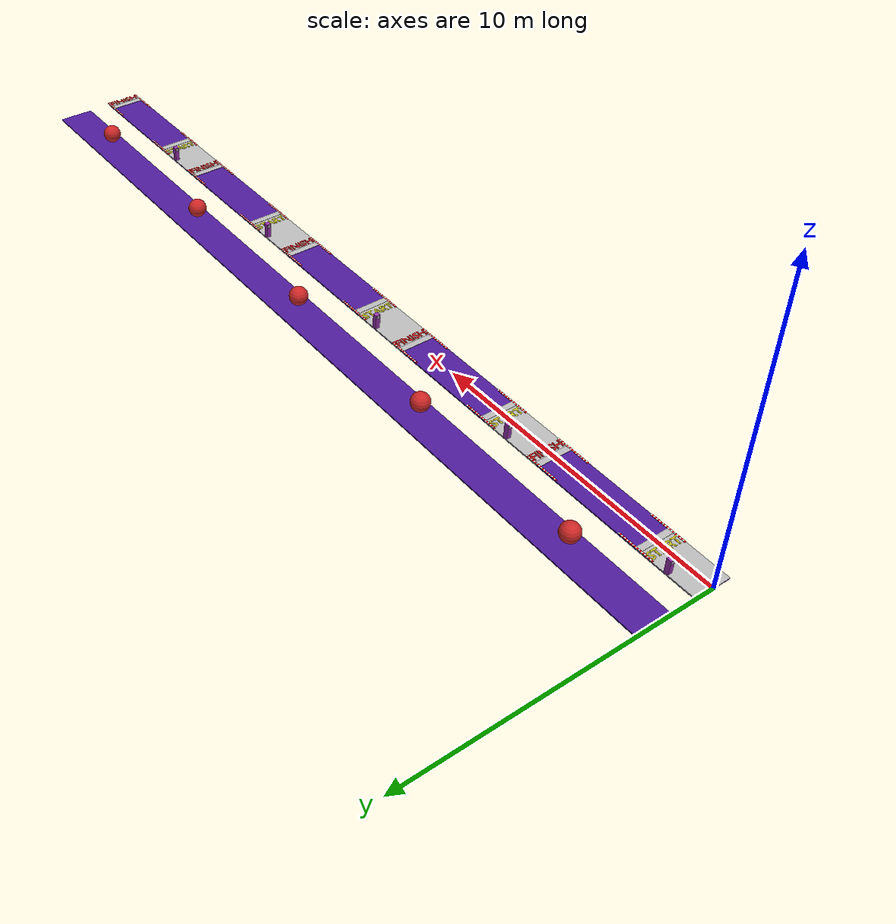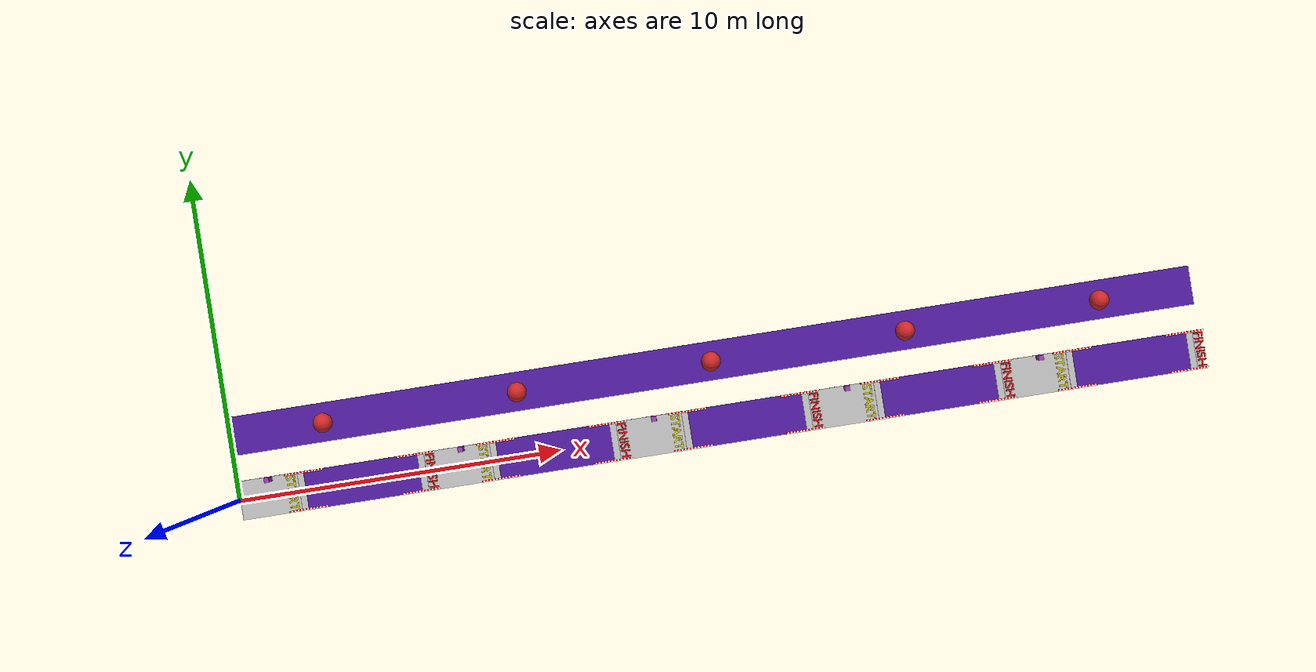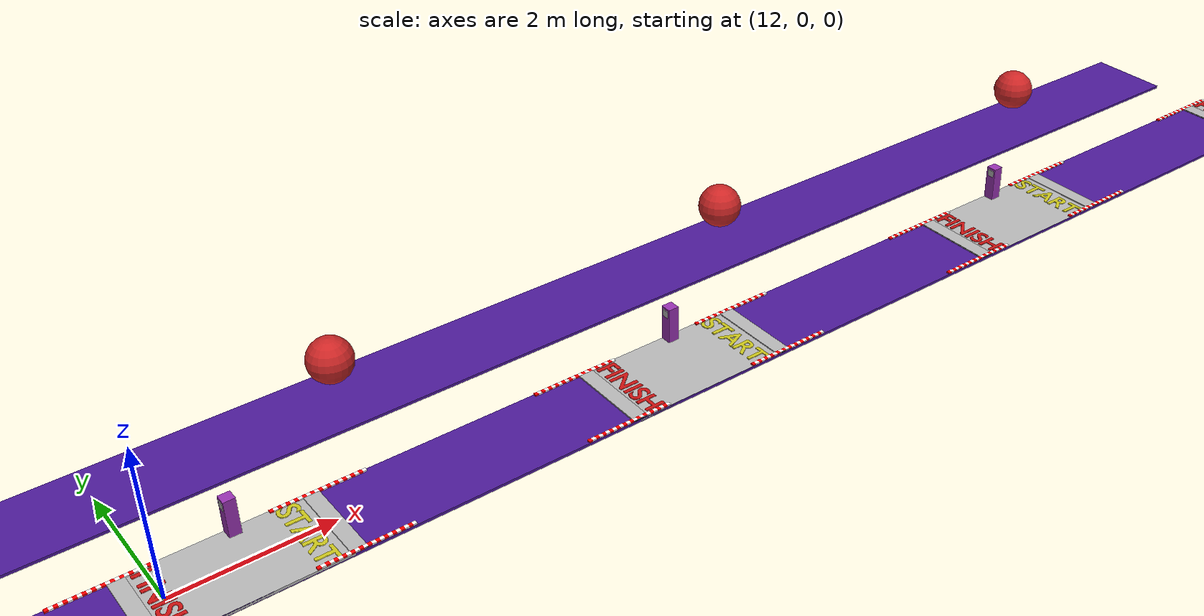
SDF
<?xml version="1.0" ?>
<sdf version="1.5">
  <world name="default">
    <gui>
      <camera name="user_camera">
        <pose>-3.2 0.0 2.05 0 0.33 0.0</pose>
      </camera>
    </gui>
    <scene>
      <sky>
        <clouds>
          <speed>3</speed>
        </clouds>
      </sky>
      <ambient>0.6 0.6 0.6 1</ambient>
      <background>0.5 0.5 0.5 1</background>
      <shadows>0</shadows>
    </scene>

    <!-- A global light source -->
    <include>
      <uri>model://sun_2</uri>
    </include>

    <include>
      <uri>model://task_3_whole</uri>
    </include>

    <include>
      <name>ds1</name>
      <pose>3 2 0.6 0 0 0</pose>
      <uri>model://disturbance_sphere</uri>
    </include>
   <include>
      <name>ds2</name>
      <pose>9 2 0.6 0 0 0</pose>
      <uri>model://disturbance_sphere</uri>
    </include>
   <include>
      <name>ds3</name>
      <pose>15 2 0.6 0 0 0</pose>
      <uri>model://disturbance_sphere</uri>
    </include>
   <include>
      <name>ds4</name>
      <pose>21 2 0.6 0 0 0</pose>
      <uri>model://disturbance_sphere</uri>
    </include>
   <include>
      <name>ds5</name>
      <pose>27 2 0.6 0 0 0</pose>
      <uri>model://disturbance_sphere</uri>
    </include>

  </world>
</sdf>

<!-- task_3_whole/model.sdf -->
<sdf version="1.5">
  <model name="task_3_whole">

    <include>
      <pose>0.923 0.52 0.42 0 1.5708 0</pose>
      <uri>model://disturbance_1_false</uri>
    </include>
    <include>
      <pose>6.923 0.52 0.42 0 1.5708 0</pose>
      <uri>model://disturbance_2_false</uri>
    </include>
    <include>
      <pose>12.923 0.52 0.42 0 1.5708 0</pose>
      <uri>model://disturbance_3_false</uri>
    </include>
    <include>
      <pose>18.923 0.52 0.42 0 1.5708 0</pose>
      <uri>model://disturbance_4_false</uri>
    </include>
    <include>
      <pose>24.923 0.52 0.42 0 1.5708 0</pose>
      <uri>model://disturbance_5_false</uri>
    </include>

    <include>
      <name>floorx</name>
      <pose>15 2 0 0 0 0</pose>
      <uri>model://floor_30m</uri>
    </include>

    <include>
      <name>floorb</name>
      <pose>15 0 0 0 0 0</pose>
      <uri>model://floor_30m</uri>
    </include>

    <include>
      <name>s1</name>
      <pose>1.5 0 0 0 0 -1.5708</pose>
      <uri>model://start_line</uri>
    </include>
    <include>
      <name>s2</name>
      <pose>7.5 0 0 0 0 -1.5708</pose>
      <uri>model://start_line</uri>
    </include>
    <include>
      <name>s3</name>
      <pose>13.5 0 0 0 0 -1.5708</pose>
      <uri>model://start_line</uri>
    </include>
    <include>
      <name>s4</name>
      <pose>19.5 0 0 0 0 -1.5708</pose>
      <uri>model://start_line</uri>
    </include>
    <include>
      <name>s5</name>
      <pose>25.5 0 0 0 0 -1.5708</pose>
      <uri>model://start_line</uri>
    </include>

    <include>
      <name>f1</name>
      <pose>5 0 0 0 0 -1.5708</pose>
      <uri>model://finish_line</uri>
    </include>
    <include>
      <name>f2</name>
      <pose>11 0 0 0 0 -1.5708</pose>
      <uri>model://finish_line</uri>
    </include>
    <include>
      <name>f3</name>
      <pose>17 0 0 0 0 -1.5708</pose>
      <uri>model://finish_line</uri>
    </include>
    <include>
      <name>f4</name>
      <pose>23 0 0 0 0 -1.5708</pose>
      <uri>model://finish_line</uri>
    </include>
    <include>
      <name>f5</name>
      <pose>29 0 0 0 0 -1.5708</pose>
      <uri>model://finish_line</uri>
    </include>

    <include>
      <name>w1</name>
      <pose>1 0 0.005 0 0 0</pose>
      <uri>model://floor_2_concrete</uri>
    </include>
    <include>
      <name>w2</name>
      <pose>6.8 0 0.005 0 0 0</pose>
      <uri>model://floor_2.2_concrete</uri>
    </include>
    <include>
      <name>w3</name>
      <pose>12.8 0 0.005 0 0 0</pose>
      <uri>model://floor_2.2_concrete</uri>
    </include>
    <include>
      <name>w4</name>
      <pose>18.8 0 0.005 0 0 0</pose>
      <uri>model://floor_2.2_concrete</uri>
    </include>
    <include>
      <name>w5</name>
      <pose>24.8 0 0.005 0 0 0</pose>
      <uri>model://floor_2.2_concrete</uri>
    </include>
    <include>
      <name>w6</name>
      <pose>29.85 0 0.005 0 0 0</pose>
      <uri>model://floor_0.3_concrete</uri>
    </include>

    <include>
      <name>q1</name>
      <pose>1 0.525 0 0 0 0</pose>
      <uri>model://qr_pole</uri>
    </include>
    <include>
      <name>q2</name>
      <pose>7 0.525 0 0 0 0</pose>
      <uri>model://qr_pole</uri>
    </include>
    <include>
      <name>q3</name>
      <pose>13 0.525 0 0 0 0</pose>
      <uri>model://qr_pole</uri>
    </include>
    <include>
      <name>q4</name>
      <pose>19 0.525 0 0 0 0</pose>
      <uri>model://qr_pole</uri>
    </include>
    <include>
      <name>q5</name>
      <pose>25 0.525 0 0 0 0</pose>
      <uri>model://qr_pole</uri>
    </include>

  </model>
</sdf>

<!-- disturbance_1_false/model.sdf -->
<sdf version="1.5">
  <model name="disturbance_1_false">
    <static>true</static>
    <link name="link">
      <pose>0 0 0 0 0 0</pose>
      <collision name="collision">
        <geometry>
          <box>
            <size>0.1 0.1 0.01</size>
          </box>
        </geometry>
      </collision>
      <visual name="visual">
        <cast_shadows>false</cast_shadows>
        <geometry>
          <box>
            <size>0.1 0.1 0.01</size>
          </box>
        </geometry>
        <material>
          <script>
            <uri>model://disturbance_1_false/materials/scripts</uri>
            <uri>model://disturbance_1_false/materials/textures</uri>
            <name>vrc/disturbance_1_false</name>
          </script>
        </material>
      </visual>
    </link>
  </model>
</sdf>

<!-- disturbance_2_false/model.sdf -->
<sdf version="1.5">
  <model name="disturbance_2_false">
    <static>true</static>
    <link name="link">
      <pose>0 0 0 0 0 0</pose>
      <collision name="collision">
        <geometry>
          <box>
            <size>0.1 0.1 0.01</size>
          </box>
        </geometry>
      </collision>
      <visual name="visual">
        <cast_shadows>false</cast_shadows>
        <geometry>
          <box>
            <size>0.1 0.1 0.01</size>
          </box>
        </geometry>
        <material>
          <script>
            <uri>model://disturbance_2_false/materials/scripts</uri>
            <uri>model://disturbance_2_false/materials/textures</uri>
            <name>vrc/disturbance_2_false</name>
          </script>
        </material>
      </visual>
    </link>
  </model>
</sdf>

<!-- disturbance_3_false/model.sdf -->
<sdf version="1.5">
  <model name="disturbance_3_false">
    <static>true</static>
    <link name="link">
      <pose>0 0 0 0 0 0</pose>
      <collision name="collision">
        <geometry>
          <box>
            <size>0.1 0.1 0.01</size>
          </box>
        </geometry>
      </collision>
      <visual name="visual">
        <cast_shadows>false</cast_shadows>
        <geometry>
          <box>
            <size>0.1 0.1 0.01</size>
          </box>
        </geometry>
        <material>
          <script>
            <uri>model://disturbance_3_false/materials/scripts</uri>
            <uri>model://disturbance_3_false/materials/textures</uri>
            <name>vrc/disturbance_3_false</name>
          </script>
        </material>
      </visual>
    </link>
  </model>
</sdf>

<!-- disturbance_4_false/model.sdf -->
<sdf version="1.5">
  <model name="disturbance_4_false">
    <static>true</static>
    <link name="link">
      <pose>0 0 0 0 0 0</pose>
      <collision name="collision">
        <geometry>
          <box>
            <size>0.1 0.1 0.01</size>
          </box>
        </geometry>
      </collision>
      <visual name="visual">
        <cast_shadows>false</cast_shadows>
        <geometry>
          <box>
            <size>0.1 0.1 0.01</size>
          </box>
        </geometry>
        <material>
          <script>
            <uri>model://disturbance_4_false/materials/scripts</uri>
            <uri>model://disturbance_4_false/materials/textures</uri>
            <name>vrc/disturbance_4_false</name>
          </script>
        </material>
      </visual>
    </link>
  </model>
</sdf>

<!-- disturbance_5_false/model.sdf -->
<sdf version="1.5">
  <model name="disturbance_5_false">
    <static>true</static>
    <link name="link">
      <pose>0 0 0 0 0 0</pose>
      <collision name="collision">
        <geometry>
          <box>
            <size>0.1 0.1 0.01</size>
          </box>
        </geometry>
      </collision>
      <visual name="visual">
        <cast_shadows>false</cast_shadows>
        <geometry>
          <box>
            <size>0.1 0.1 0.01</size>
          </box>
        </geometry>
        <material>
          <script>
            <uri>model://disturbance_5_false/materials/scripts</uri>
            <uri>model://disturbance_5_false/materials/textures</uri>
            <name>vrc/disturbance_5_false</name>
          </script>
        </material>
      </visual>
    </link>
  </model>
</sdf>

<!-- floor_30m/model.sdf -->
<sdf version="1.5">
  <model name="floor_30m">
    <static>true</static>
    <link name="link">
      <pose>0 0 -0.02 0 0 0</pose>
      <collision name="collision">
        <geometry>
          <box>
            <size>30.0 1.2 0.04</size>
          </box>
        </geometry>
      </collision>
      <visual name="visual">
        <geometry>
          <box>
            <size>30.0 1.2 0.04</size>
          </box>
        </geometry>
        <material>
          <script>
            <name>Gazebo/Indigo</name>
            <uri>file://media/materials/scripts/gazebo.material</uri>
          </script>
        </material>
      </visual>
    </link>
  </model>
</sdf>

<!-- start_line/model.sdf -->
<sdf version="1.5">
  <model name="start_line">

    <include>
      <name>start</name>
      <pose>-0.55 0 0 0 0 0</pose>
      <uri>model://start</uri>
    </include>
    <include>
      <name>line</name>
      <pose>0 0.45 0 0 0 0</pose>
      <uri>model://line</uri>
    </include>
    <include>
      <name>rline</name>
      <pose>-0.575 0.55 0.001 0 0 1.5708</pose>
      <uri>model://redline</uri>
    </include>
    <include>
      <name>rline2</name>
      <pose>0.575 0.55 0.001 0 0 1.5708</pose>
      <uri>model://redline</uri>
    </include>

  </model>
</sdf>

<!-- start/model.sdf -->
<sdf version='1.5'>
<model name='start'>
<static>true</static>
<link name="link">
   <pose frame=''>0 0 0.01 0 0 0</pose>
  <visual name='startV'>
    <cast_shadows>false</cast_shadows>
    <geometry>
      <mesh>
        <scale>1.0 1.0 1.0</scale>
        <uri>model://start/model.dae</uri>
      </mesh>
    </geometry>
    <material>
      <script>
        <name>start</name>
        <uri>model://start/model.dae</uri>
      </script>
    </material>
  </visual>
</link>
</model>
</sdf>

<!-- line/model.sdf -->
<sdf version='1.5'>
<model name='line'>
<static>true</static>
<link name="link">
   <pose frame=''>0 0 0.01 0 0 0</pose>
  <visual name='lineV'>
    <cast_shadows>false</cast_shadows>
    <geometry>
      <mesh>
        <scale>1.0 1.0 1.0</scale>
        <uri>model://line/line.dae</uri>
      </mesh>
    </geometry>
    <material>
      <script>
        <name>start</name>
        <uri>model://line/line.dae</uri>
      </script>
    </material>
  </visual>
</link>
</model>
</sdf>

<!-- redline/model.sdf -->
<sdf version='1.5'>
<model name='redline'>
<static>true</static>
<link name="redline">
   <pose frame=''>0 0 0 0 0 0</pose>
  <visual name='redlineV'>
    <cast_shadows>false</cast_shadows>
    <geometry>
      <mesh>
        <scale>1.0 1.0 1.0</scale>
        <uri>model://redline/redline2.dae</uri>
      </mesh>
    </geometry>
    <material>
      <script>
        <name>start</name>
        <uri>model://redline/redline2.dae</uri>
      </script>
    </material>
  </visual>
</link>
</model>
</sdf>

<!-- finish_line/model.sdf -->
<sdf version="1.5">
  <model name="finish_line">

    <include>
      <name>start</name>
      <pose>-0.55 0.85 0 0 0 0</pose>
      <uri>model://finish</uri>
    </include>
    <include>
      <name>line</name>
      <pose>0 0.7 0 0 0 0</pose>
      <uri>model://line</uri>
    </include>
    <include>
      <name>rline</name>
      <pose>-0.575 0.55 0.001 0 0 1.5708</pose>
      <uri>model://redline</uri>
    </include>
    <include>
      <name>rline2</name>
      <pose>0.575 0.55 0.001 0 0 1.5708</pose>
      <uri>model://redline</uri>
    </include>

  </model>
</sdf>

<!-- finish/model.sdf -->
<sdf version='1.5'>
<model name='finish'>
<static>true</static>
<link name="link">
   <pose frame=''>0 0 0.01 0 0 0</pose>
  <visual name='finishV'>
    <cast_shadows>false</cast_shadows>
    <geometry>
      <mesh>
        <scale>1.0 1.0 1.0</scale>
        <uri>model://finish/model.dae</uri>
      </mesh>
    </geometry>
    <material>
      <script>
        <name>finish</name>
        <uri>model://finish/model.dae</uri>
      </script>
    </material>
  </visual>
</link>
</model>
</sdf>

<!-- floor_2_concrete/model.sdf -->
<sdf version="1.5">
  <model name="floor_2_concrete">
    <static>true</static>
    <link name="link">
      <pose>0 0 -0.02 0 0 0</pose>
      <collision name="collision">
        <geometry>
          <box>
            <size>2 1.2 0.04</size>
          </box>
        </geometry>
      </collision>
      <visual name="visual">
        <geometry>
          <box>
            <size>2 1.2 0.04</size>
          </box>
        </geometry>
        <material>
          <script>
            <uri>model://floor_2_concrete/materials/scripts</uri>
            <uri>model://floor_2_concrete/materials/textures</uri>
            <name>vrc/floor_2_concrete</name>
          </script>
        </material>
      </visual>
    </link>
  </model>
</sdf>

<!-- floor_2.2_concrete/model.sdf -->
<sdf version="1.5">
  <model name="floor_2.2_concrete">
    <static>true</static>
    <link name="link">
      <pose>0 0 -0.02 0 0 0</pose>
      <collision name="collision">
        <geometry>
          <box>
            <size>2.2 1.2 0.04</size>
          </box>
        </geometry>
      </collision>
      <visual name="visual">
        <geometry>
          <box>
            <size>2.2 1.2 0.04</size>
          </box>
        </geometry>
        <material>
          <script>
            <uri>model://floor_2.2_concrete/materials/scripts</uri>
            <uri>model://floor_2.2_concrete/materials/textures</uri>
            <name>vrc/floor_2.2_concrete</name>
          </script>
        </material>
      </visual>
    </link>
  </model>
</sdf>

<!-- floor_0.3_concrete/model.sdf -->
<sdf version="1.5">
  <model name="floor_0.3_concrete">
    <static>true</static>
    <link name="link">
      <pose>0 0 -0.02 0 0 0</pose>
      <collision name="collision">
        <geometry>
          <box>
            <size>0.3 1.2 0.04</size>
          </box>
        </geometry>
      </collision>
      <visual name="visual">
        <geometry>
          <box>
            <size>0.3 1.2 0.04</size>
          </box>
        </geometry>
        <material>
          <script>
            <uri>model://floor_0.3_concrete/materials/scripts</uri>
            <uri>model://floor_0.3_concrete/materials/textures</uri>
            <name>vrc/floor_0.3_concrete</name>
          </script>
        </material>
      </visual>
    </link>
  </model>
</sdf>

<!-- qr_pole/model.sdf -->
<sdf version="1.5">
  <model name="qr_pole">
    <static>true</static>
    <link name="link">
      <pose>0 0 0.25 0 0 0</pose>
      <collision name="collision">
        <geometry>
          <box>
            <size>0.15 0.15 0.5</size>
          </box>
        </geometry>
      </collision>
      <visual name="visual">
        <cast_shadows>false</cast_shadows>
        <geometry>
          <box>
            <size>0.15 0.15 0.5</size>
          </box>
        </geometry>
        <material>
          <script>
            <uri>file://media/materials/scripts/gazebo.material</uri>
            <name>Gazebo/Purple</name>
          </script>
        </material>
      </visual>
    </link>
  </model>
</sdf>

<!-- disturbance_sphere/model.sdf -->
<sdf version="1.5">
  <model name="disturbance_sphere">
    <static>false</static>
    <self_collide>true</self_collide>
    <link name="link">
      <inertial>
        <mass>10.0</mass>
          <inertia>
            <ixx>1.44</ixx>
            <ixy>0.0</ixy>
            <ixz>0.0</ixz>
            <iyy>1.44</iyy>
            <iyz>0.0</iyz>
            <izz>1.44</izz>
          </inertia>
      </inertial>
      <collision name="ccc">
        <geometry>
          <sphere>
            <radius>0.3</radius>
          </sphere>
        </geometry>
      </collision>
      <visual name="vvv">
        <cast_shadows>false</cast_shadows>
        <geometry>
          <sphere>
            <radius>0.3</radius>
          </sphere>
        </geometry>
        <material>
          <script>
            <name>Gazebo/Red</name>
            <uri>file://media/materials/scripts/gazebo.material</uri>
          </script>
        </material>
      </visual>
    </link>
  </model>
</sdf>
